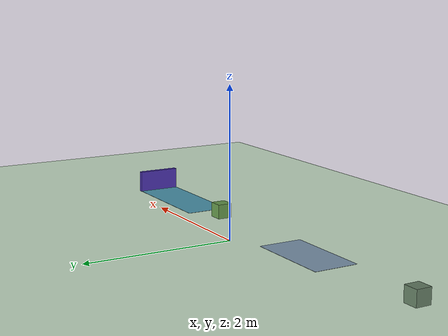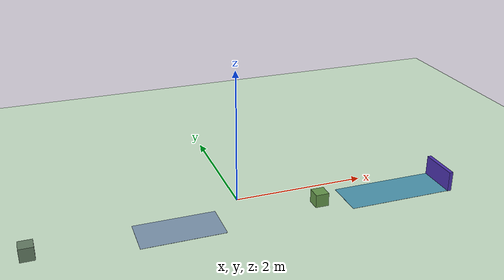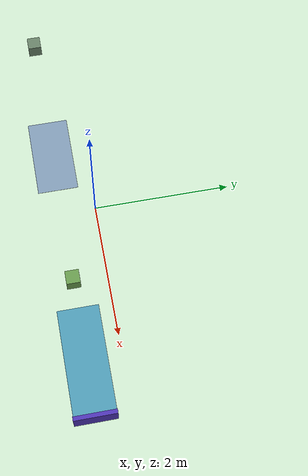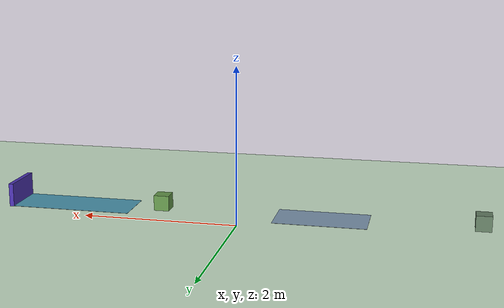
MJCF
<mujoco model="model_learning_1d">
  <compiler angle="radian"/>
  <option timestep="0.01" gravity="0 0 -9.8" iterations="20" integrator="RK4" />
  <!-- Copied from PR2 model in GPS. This was necessary to get natural behaviour -->
  <default>
      <joint armature="0.0" damping="0.0" limited="true" />
      <geom friction="0.005 0 0" density="1000" margin="0.002" condim="3"/>
  </default>
  <size njmax="500" nconmax="100" />
  <worldbody>
      <!-- ======================Adding lighting (why is it inside worldbody?)======================== -->
  		<light cutoff="100" diffuse="1 1 1" dir="-0 0 -1.3" directional="true" exponent="1" pos="0 0 1.3" specular=".1 .1 .1"/>
  		<geom contype="1" conaffinity="0" condim="1" name="floor" pos="0 0 0" rgba="0.8 0.9 0.8 1" size="20 20 .125" type="plane" material="MatPlane"/>

      <body name="object" pos="-3.0 -0.5 0.101" >
        <geom rgba="0.4 0.5 0.4 1" type="box" size="0.1 0.1 0.1" contype="1" conaffinity="1" condim="1"/>
        <joint name="obj_slidex" type="slide" pos="0 0 0" axis="1 0 0" range="-10.0 10.0" />
      </body>

        <body name="friction_patch_1" pos="-1.0 -0.5 -0.001">
        <geom rgba="0.5 0.6 0.7 1" type="box" size="0.6 0.3 0.0011" contype="0" conaffinity="1" friction="0.01 0 0"/>
      </body>
      <body name="object" pos="1.1 -0.5 0.101" >
        <geom rgba="0.4 0.6 0.3 1" type="box" size="0.1 0.1 0.1" contype="0" conaffinity="1" condim="1"/>
        <joint name="obj_slidex" type="slide" pos="0 0 0" axis="1 0 0" range="-10.0 10.0" />
      </body>
      <body name="friction_patch_2" pos="2.3 -0.5 -0.001">
        <geom rgba="0.3 0.6 0.7 1" type="box" size="0.8 0.3 0.0011" contype="0" conaffinity="1" friction="0.005 0 0"/>
      </body>
      <body name="obstacle" pos="3.115 -0.5 .1">
        <geom rgba="0.3 0.2 0.7 1" type="box" size="0.03 0.3 0.2" contype="0" conaffinity="1"/>
      </body>

    </worldbody>

    <!-- ======================Visualizing the world================================== -->
    <asset>
        <texture type="skybox" builtin="gradient" rgb1=".4 .5 .6" rgb2="0 0 0"
            width="100" height="100"/>
        <texture builtin="flat" height="1278" mark="cross" markrgb="1 1 1" name="texgeom" random="0.01" rgb1="0.8 0.6 0.4" rgb2="0.8 0.6 0.4" type="cube" width="127"/>
        <texture builtin="checker" height="100" name="texplane" rgb1="0 0 0" rgb2="0.8 0.8 0.8" type="2d" width="100"/>
        <material name="MatPlane" reflectance="0.01" shininess="1" specular="1" texrepeat="60 60" texture="texplane"/>
        <material name="geom" texture="texgeom" texuniform="true"/>
    </asset>
    <!-- ======================Adding actuactors================================== -->
    <!-- May have to change ctrlrange, is it in radians?
    gearratio as per abb convention													-->
    <actuator>
			<motor ctrllimited="true" ctrlrange="-50.0 50.0" gear="1" joint="obj_slidex"/>
	</actuator>
</mujoco>
